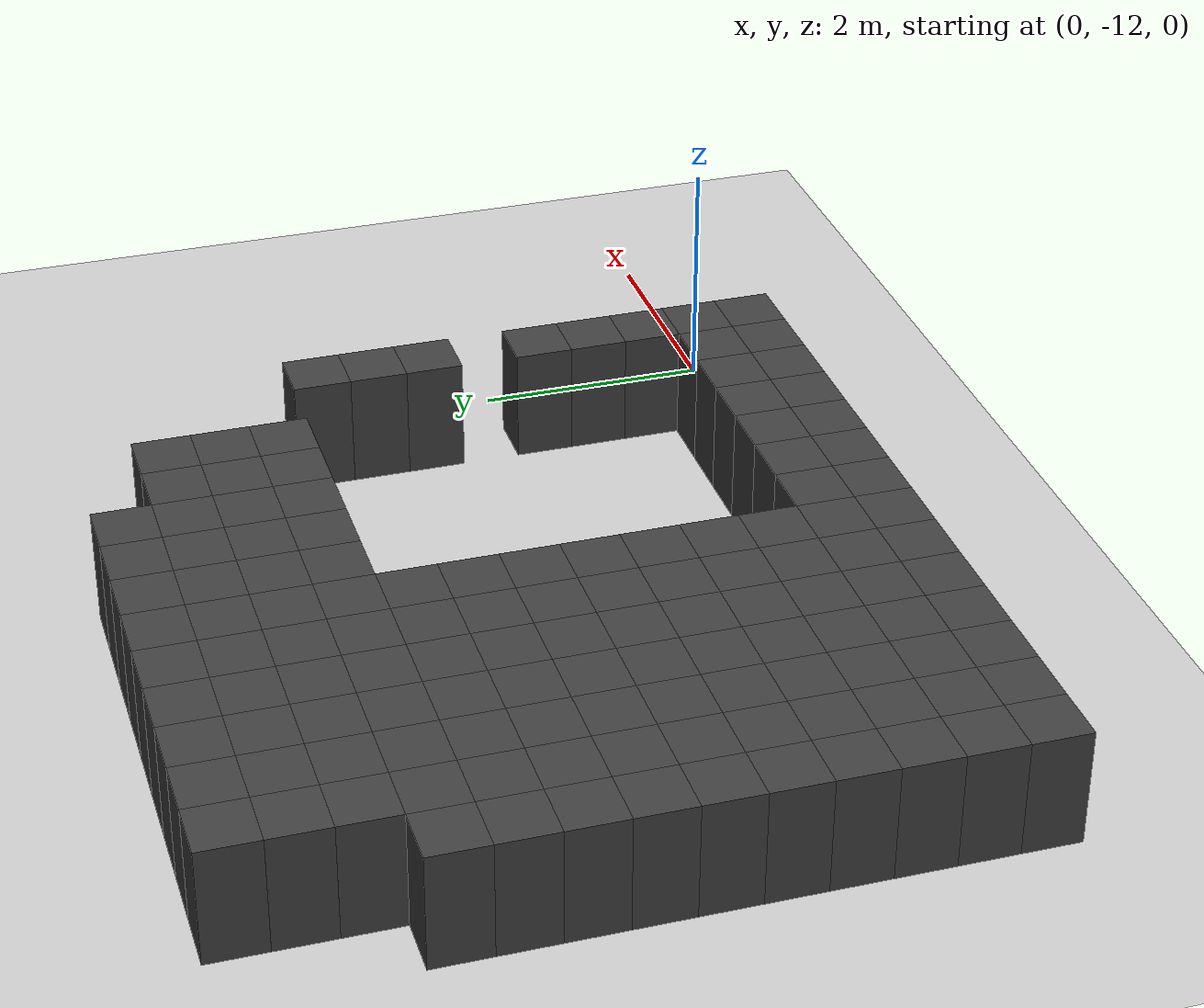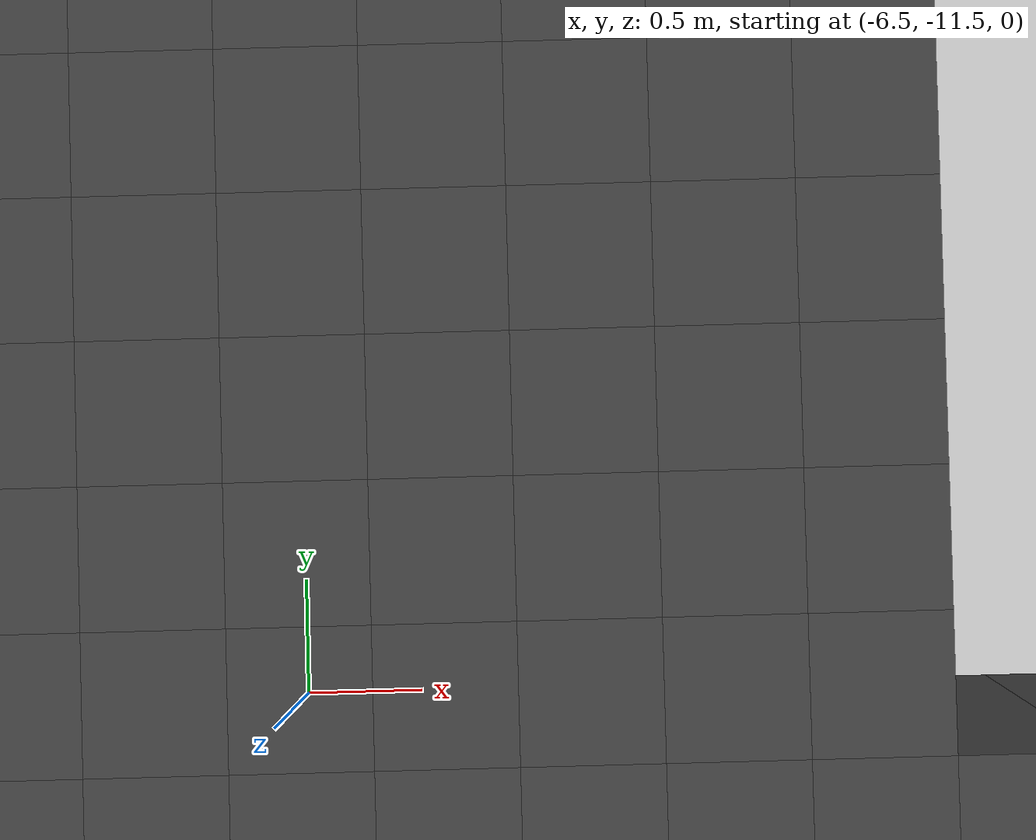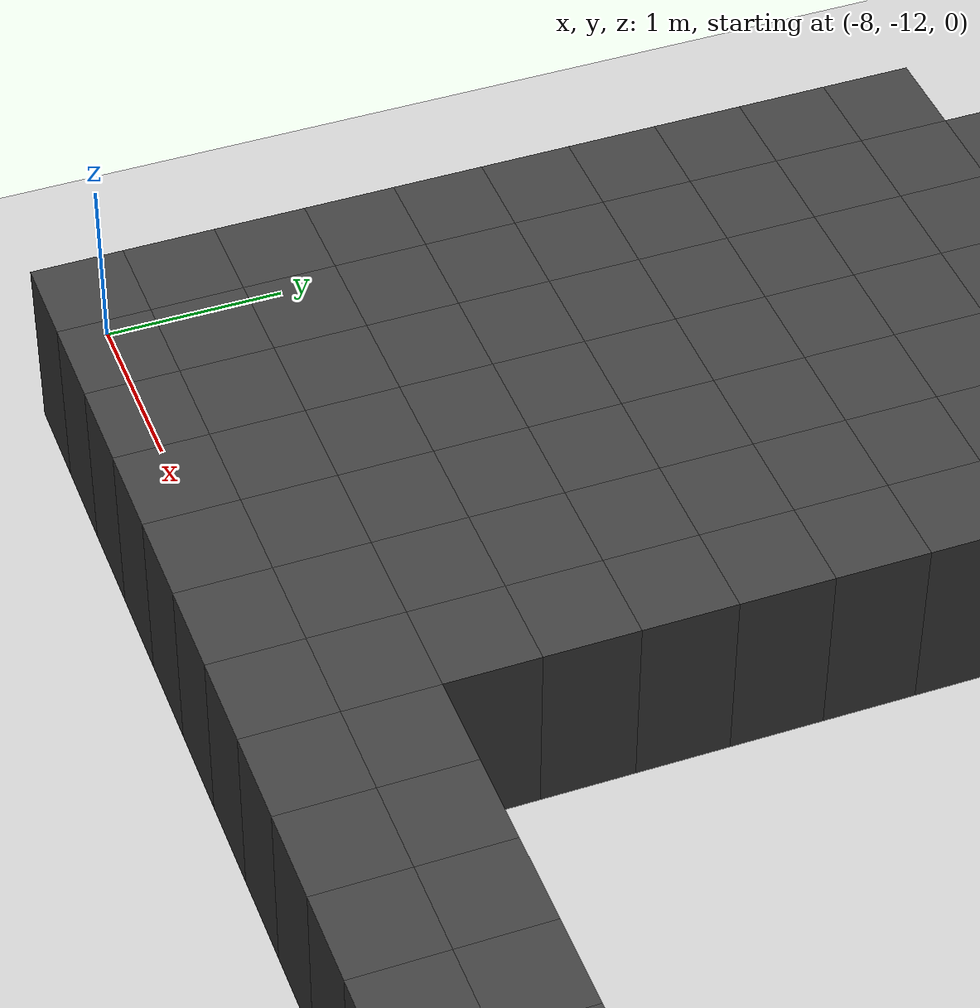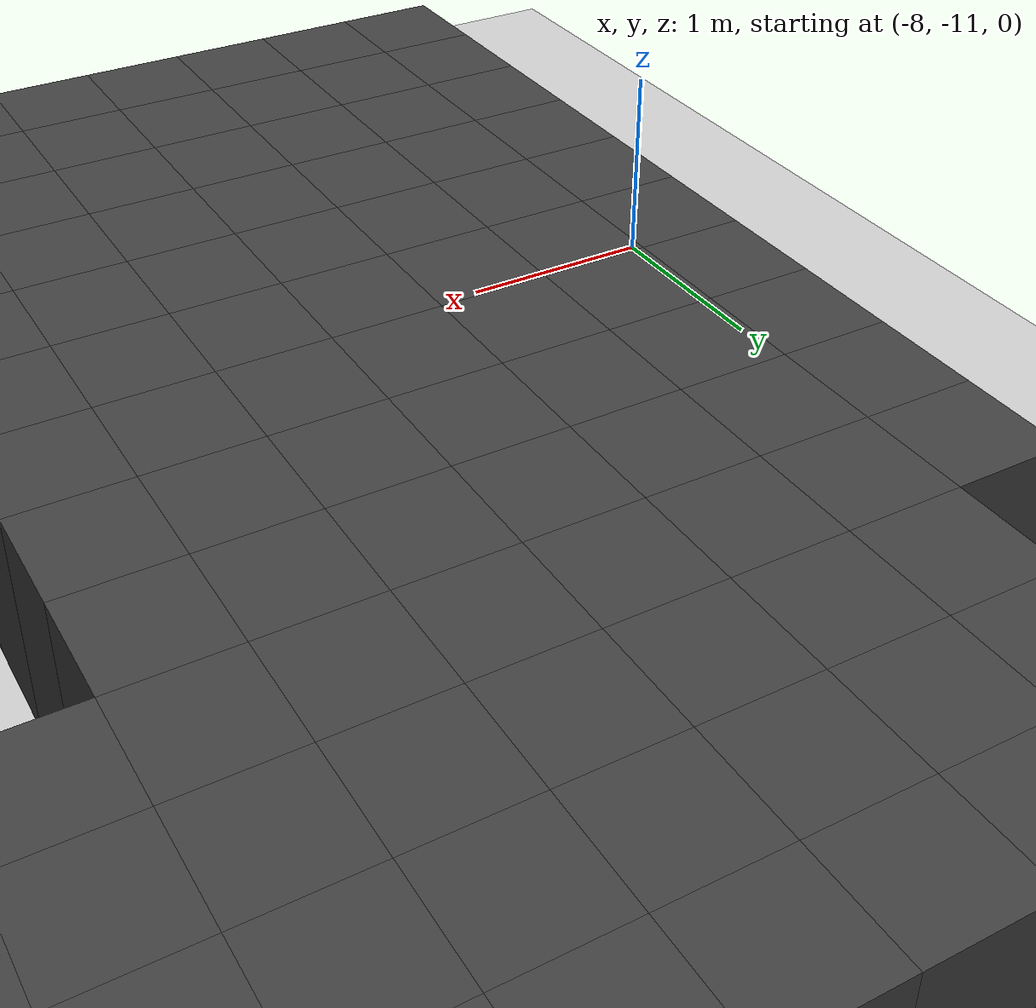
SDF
<sdf version="1.7">
 <world name="map_14056">
  <model name="ground_plane">
   <static>true</static>
   <link name="link">
    <collision name="collision">
     <geometry><plane><normal>0 0 1</normal><size>200 200</size></plane></geometry>
    </collision>
    <visual name="visual">
     <geometry><plane><normal>0 0 1</normal><size>200 200</size></plane></geometry>
     <material><ambient>0.8 0.8 0.8 1</ambient><diffuse>0.8 0.8 0.8 1</diffuse></material>
    </visual>
   </link>
  </model>
  <model name="maze_environment">
   <static>true</static>
   <link name="wall_1317">
    <pose>-6.750 -6.250 0.500 0 0 0</pose>
    <collision name="col"><geometry><box><size>0.5 0.5 1.0</size></box></geometry></collision>
    <visual name="vis">
     <geometry><box><size>0.5 0.5 1.0</size></box></geometry>
     <material><ambient>0.15 0.15 0.15 1</ambient><diffuse>0.25 0.25 0.25 1</diffuse></material>
    </visual>
   </link>
   <link name="wall_1318">
    <pose>-6.250 -6.250 0.500 0 0 0</pose>
    <collision name="col"><geometry><box><size>0.5 0.5 1.0</size></box></geometry></collision>
    <visual name="vis">
     <geometry><box><size>0.5 0.5 1.0</size></box></geometry>
     <material><ambient>0.15 0.15 0.15 1</ambient><diffuse>0.25 0.25 0.25 1</diffuse></material>
    </visual>
   </link>
   <link name="wall_1319">
    <pose>-5.750 -6.250 0.500 0 0 0</pose>
    <collision name="col"><geometry><box><size>0.5 0.5 1.0</size></box></geometry></collision>
    <visual name="vis">
     <geometry><box><size>0.5 0.5 1.0</size></box></geometry>
     <material><ambient>0.15 0.15 0.15 1</ambient><diffuse>0.25 0.25 0.25 1</diffuse></material>
    </visual>
   </link>
   <link name="wall_1320">
    <pose>-5.250 -6.250 0.500 0 0 0</pose>
    <collision name="col"><geometry><box><size>0.5 0.5 1.0</size></box></geometry></collision>
    <visual name="vis">
     <geometry><box><size>0.5 0.5 1.0</size></box></geometry>
     <material><ambient>0.15 0.15 0.15 1</ambient><diffuse>0.25 0.25 0.25 1</diffuse></material>
    </visual>
   </link>
   <link name="wall_1321">
    <pose>-4.750 -6.250 0.500 0 0 0</pose>
    <collision name="col"><geometry><box><size>0.5 0.5 1.0</size></box></geometry></collision>
    <visual name="vis">
     <geometry><box><size>0.5 0.5 1.0</size></box></geometry>
     <material><ambient>0.15 0.15 0.15 1</ambient><diffuse>0.25 0.25 0.25 1</diffuse></material>
    </visual>
   </link>
   <link name="wall_1322">
    <pose>-4.250 -6.250 0.500 0 0 0</pose>
    <collision name="col"><geometry><box><size>0.5 0.5 1.0</size></box></geometry></collision>
    <visual name="vis">
     <geometry><box><size>0.5 0.5 1.0</size></box></geometry>
     <material><ambient>0.15 0.15 0.15 1</ambient><diffuse>0.25 0.25 0.25 1</diffuse></material>
    </visual>
   </link>
   <link name="wall_1323">
    <pose>-3.750 -6.250 0.500 0 0 0</pose>
    <collision name="col"><geometry><box><size>0.5 0.5 1.0</size></box></geometry></collision>
    <visual name="vis">
     <geometry><box><size>0.5 0.5 1.0</size></box></geometry>
     <material><ambient>0.15 0.15 0.15 1</ambient><diffuse>0.25 0.25 0.25 1</diffuse></material>
    </visual>
   </link>
   <link name="wall_1324">
    <pose>-3.250 -6.250 0.500 0 0 0</pose>
    <collision name="col"><geometry><box><size>0.5 0.5 1.0</size></box></geometry></collision>
    <visual name="vis">
     <geometry><box><size>0.5 0.5 1.0</size></box></geometry>
     <material><ambient>0.15 0.15 0.15 1</ambient><diffuse>0.25 0.25 0.25 1</diffuse></material>
    </visual>
   </link>
   <link name="wall_1325">
    <pose>-2.750 -6.250 0.500 0 0 0</pose>
    <collision name="col"><geometry><box><size>0.5 0.5 1.0</size></box></geometry></collision>
    <visual name="vis">
     <geometry><box><size>0.5 0.5 1.0</size></box></geometry>
     <material><ambient>0.15 0.15 0.15 1</ambient><diffuse>0.25 0.25 0.25 1</diffuse></material>
    </visual>
   </link>
   <link name="wall_1350">
    <pose>-6.750 -6.750 0.500 0 0 0</pose>
    <collision name="col"><geometry><box><size>0.5 0.5 1.0</size></box></geometry></collision>
    <visual name="vis">
     <geometry><box><size>0.5 0.5 1.0</size></box></geometry>
     <material><ambient>0.15 0.15 0.15 1</ambient><diffuse>0.25 0.25 0.25 1</diffuse></material>
    </visual>
   </link>
   <link name="wall_1351">
    <pose>-6.250 -6.750 0.500 0 0 0</pose>
    <collision name="col"><geometry><box><size>0.5 0.5 1.0</size></box></geometry></collision>
    <visual name="vis">
     <geometry><box><size>0.5 0.5 1.0</size></box></geometry>
     <material><ambient>0.15 0.15 0.15 1</ambient><diffuse>0.25 0.25 0.25 1</diffuse></material>
    </visual>
   </link>
   <link name="wall_1352">
    <pose>-5.750 -6.750 0.500 0 0 0</pose>
    <collision name="col"><geometry><box><size>0.5 0.5 1.0</size></box></geometry></collision>
    <visual name="vis">
     <geometry><box><size>0.5 0.5 1.0</size></box></geometry>
     <material><ambient>0.15 0.15 0.15 1</ambient><diffuse>0.25 0.25 0.25 1</diffuse></material>
    </visual>
   </link>
   <link name="wall_1353">
    <pose>-5.250 -6.750 0.500 0 0 0</pose>
    <collision name="col"><geometry><box><size>0.5 0.5 1.0</size></box></geometry></collision>
    <visual name="vis">
     <geometry><box><size>0.5 0.5 1.0</size></box></geometry>
     <material><ambient>0.15 0.15 0.15 1</ambient><diffuse>0.25 0.25 0.25 1</diffuse></material>
    </visual>
   </link>
   <link name="wall_1354">
    <pose>-4.750 -6.750 0.500 0 0 0</pose>
    <collision name="col"><geometry><box><size>0.5 0.5 1.0</size></box></geometry></collision>
    <visual name="vis">
     <geometry><box><size>0.5 0.5 1.0</size></box></geometry>
     <material><ambient>0.15 0.15 0.15 1</ambient><diffuse>0.25 0.25 0.25 1</diffuse></material>
    </visual>
   </link>
   <link name="wall_1355">
    <pose>-4.250 -6.750 0.500 0 0 0</pose>
    <collision name="col"><geometry><box><size>0.5 0.5 1.0</size></box></geometry></collision>
    <visual name="vis">
     <geometry><box><size>0.5 0.5 1.0</size></box></geometry>
     <material><ambient>0.15 0.15 0.15 1</ambient><diffuse>0.25 0.25 0.25 1</diffuse></material>
    </visual>
   </link>
   <link name="wall_1356">
    <pose>-3.750 -6.750 0.500 0 0 0</pose>
    <collision name="col"><geometry><box><size>0.5 0.5 1.0</size></box></geometry></collision>
    <visual name="vis">
     <geometry><box><size>0.5 0.5 1.0</size></box></geometry>
     <material><ambient>0.15 0.15 0.15 1</ambient><diffuse>0.25 0.25 0.25 1</diffuse></material>
    </visual>
   </link>
   <link name="wall_1357">
    <pose>-3.250 -6.750 0.500 0 0 0</pose>
    <collision name="col"><geometry><box><size>0.5 0.5 1.0</size></box></geometry></collision>
    <visual name="vis">
     <geometry><box><size>0.5 0.5 1.0</size></box></geometry>
     <material><ambient>0.15 0.15 0.15 1</ambient><diffuse>0.25 0.25 0.25 1</diffuse></material>
    </visual>
   </link>
   <link name="wall_1358">
    <pose>-2.750 -6.750 0.500 0 0 0</pose>
    <collision name="col"><geometry><box><size>0.5 0.5 1.0</size></box></geometry></collision>
    <visual name="vis">
     <geometry><box><size>0.5 0.5 1.0</size></box></geometry>
     <material><ambient>0.15 0.15 0.15 1</ambient><diffuse>0.25 0.25 0.25 1</diffuse></material>
    </visual>
   </link>
   <link name="wall_1359">
    <pose>-2.250 -6.750 0.500 0 0 0</pose>
    <collision name="col"><geometry><box><size>0.5 0.5 1.0</size></box></geometry></collision>
    <visual name="vis">
     <geometry><box><size>0.5 0.5 1.0</size></box></geometry>
     <material><ambient>0.15 0.15 0.15 1</ambient><diffuse>0.25 0.25 0.25 1</diffuse></material>
    </visual>
   </link>
   <link name="wall_1360">
    <pose>-1.750 -6.750 0.500 0 0 0</pose>
    <collision name="col"><geometry><box><size>0.5 0.5 1.0</size></box></geometry></collision>
    <visual name="vis">
     <geometry><box><size>0.5 0.5 1.0</size></box></geometry>
     <material><ambient>0.15 0.15 0.15 1</ambient><diffuse>0.25 0.25 0.25 1</diffuse></material>
    </visual>
   </link>
   <link name="wall_1381">
    <pose>-6.750 -7.250 0.500 0 0 0</pose>
    <collision name="col"><geometry><box><size>0.5 0.5 1.0</size></box></geometry></collision>
    <visual name="vis">
     <geometry><box><size>0.5 0.5 1.0</size></box></geometry>
     <material><ambient>0.15 0.15 0.15 1</ambient><diffuse>0.25 0.25 0.25 1</diffuse></material>
    </visual>
   </link>
   <link name="wall_1382">
    <pose>-6.250 -7.250 0.500 0 0 0</pose>
    <collision name="col"><geometry><box><size>0.5 0.5 1.0</size></box></geometry></collision>
    <visual name="vis">
     <geometry><box><size>0.5 0.5 1.0</size></box></geometry>
     <material><ambient>0.15 0.15 0.15 1</ambient><diffuse>0.25 0.25 0.25 1</diffuse></material>
    </visual>
   </link>
   <link name="wall_1383">
    <pose>-5.750 -7.250 0.500 0 0 0</pose>
    <collision name="col"><geometry><box><size>0.5 0.5 1.0</size></box></geometry></collision>
    <visual name="vis">
     <geometry><box><size>0.5 0.5 1.0</size></box></geometry>
     <material><ambient>0.15 0.15 0.15 1</ambient><diffuse>0.25 0.25 0.25 1</diffuse></material>
    </visual>
   </link>
   <link name="wall_1384">
    <pose>-5.250 -7.250 0.500 0 0 0</pose>
    <collision name="col"><geometry><box><size>0.5 0.5 1.0</size></box></geometry></collision>
    <visual name="vis">
     <geometry><box><size>0.5 0.5 1.0</size></box></geometry>
     <material><ambient>0.15 0.15 0.15 1</ambient><diffuse>0.25 0.25 0.25 1</diffuse></material>
    </visual>
   </link>
   <link name="wall_1385">
    <pose>-4.750 -7.250 0.500 0 0 0</pose>
    <collision name="col"><geometry><box><size>0.5 0.5 1.0</size></box></geometry></collision>
    <visual name="vis">
     <geometry><box><size>0.5 0.5 1.0</size></box></geometry>
     <material><ambient>0.15 0.15 0.15 1</ambient><diffuse>0.25 0.25 0.25 1</diffuse></material>
    </visual>
   </link>
   <link name="wall_1386">
    <pose>-4.250 -7.250 0.500 0 0 0</pose>
    <collision name="col"><geometry><box><size>0.5 0.5 1.0</size></box></geometry></collision>
    <visual name="vis">
     <geometry><box><size>0.5 0.5 1.0</size></box></geometry>
     <material><ambient>0.15 0.15 0.15 1</ambient><diffuse>0.25 0.25 0.25 1</diffuse></material>
    </visual>
   </link>
   <link name="wall_1387">
    <pose>-3.750 -7.250 0.500 0 0 0</pose>
    <collision name="col"><geometry><box><size>0.5 0.5 1.0</size></box></geometry></collision>
    <visual name="vis">
     <geometry><box><size>0.5 0.5 1.0</size></box></geometry>
     <material><ambient>0.15 0.15 0.15 1</ambient><diffuse>0.25 0.25 0.25 1</diffuse></material>
    </visual>
   </link>
   <link name="wall_1388">
    <pose>-3.250 -7.250 0.500 0 0 0</pose>
    <collision name="col"><geometry><box><size>0.5 0.5 1.0</size></box></geometry></collision>
    <visual name="vis">
     <geometry><box><size>0.5 0.5 1.0</size></box></geometry>
     <material><ambient>0.15 0.15 0.15 1</ambient><diffuse>0.25 0.25 0.25 1</diffuse></material>
    </visual>
   </link>
   <link name="wall_1389">
    <pose>-2.750 -7.250 0.500 0 0 0</pose>
    <collision name="col"><geometry><box><size>0.5 0.5 1.0</size></box></geometry></collision>
    <visual name="vis">
     <geometry><box><size>0.5 0.5 1.0</size></box></geometry>
     <material><ambient>0.15 0.15 0.15 1</ambient><diffuse>0.25 0.25 0.25 1</diffuse></material>
    </visual>
   </link>
   <link name="wall_1390">
    <pose>-2.250 -7.250 0.500 0 0 0</pose>
    <collision name="col"><geometry><box><size>0.5 0.5 1.0</size></box></geometry></collision>
    <visual name="vis">
     <geometry><box><size>0.5 0.5 1.0</size></box></geometry>
     <material><ambient>0.15 0.15 0.15 1</ambient><diffuse>0.25 0.25 0.25 1</diffuse></material>
    </visual>
   </link>
   <link name="wall_1391">
    <pose>-1.750 -7.250 0.500 0 0 0</pose>
    <collision name="col"><geometry><box><size>0.5 0.5 1.0</size></box></geometry></collision>
    <visual name="vis">
     <geometry><box><size>0.5 0.5 1.0</size></box></geometry>
     <material><ambient>0.15 0.15 0.15 1</ambient><diffuse>0.25 0.25 0.25 1</diffuse></material>
    </visual>
   </link>
   <link name="wall_1415">
    <pose>-7.250 -7.750 0.500 0 0 0</pose>
    <collision name="col"><geometry><box><size>0.5 0.5 1.0</size></box></geometry></collision>
    <visual name="vis">
     <geometry><box><size>0.5 0.5 1.0</size></box></geometry>
     <material><ambient>0.15 0.15 0.15 1</ambient><diffuse>0.25 0.25 0.25 1</diffuse></material>
    </visual>
   </link>
   <link name="wall_1416">
    <pose>-6.750 -7.750 0.500 0 0 0</pose>
    <collision name="col"><geometry><box><size>0.5 0.5 1.0</size></box></geometry></collision>
    <visual name="vis">
     <geometry><box><size>0.5 0.5 1.0</size></box></geometry>
     <material><ambient>0.15 0.15 0.15 1</ambient><diffuse>0.25 0.25 0.25 1</diffuse></material>
    </visual>
   </link>
   <link name="wall_1417">
    <pose>-6.250 -7.750 0.500 0 0 0</pose>
    <collision name="col"><geometry><box><size>0.5 0.5 1.0</size></box></geometry></collision>
    <visual name="vis">
     <geometry><box><size>0.5 0.5 1.0</size></box></geometry>
     <material><ambient>0.15 0.15 0.15 1</ambient><diffuse>0.25 0.25 0.25 1</diffuse></material>
    </visual>
   </link>
   <link name="wall_1418">
    <pose>-5.750 -7.750 0.500 0 0 0</pose>
    <collision name="col"><geometry><box><size>0.5 0.5 1.0</size></box></geometry></collision>
    <visual name="vis">
     <geometry><box><size>0.5 0.5 1.0</size></box></geometry>
     <material><ambient>0.15 0.15 0.15 1</ambient><diffuse>0.25 0.25 0.25 1</diffuse></material>
    </visual>
   </link>
   <link name="wall_1419">
    <pose>-5.250 -7.750 0.500 0 0 0</pose>
    <collision name="col"><geometry><box><size>0.5 0.5 1.0</size></box></geometry></collision>
    <visual name="vis">
     <geometry><box><size>0.5 0.5 1.0</size></box></geometry>
     <material><ambient>0.15 0.15 0.15 1</ambient><diffuse>0.25 0.25 0.25 1</diffuse></material>
    </visual>
   </link>
   <link name="wall_1420">
    <pose>-4.750 -7.750 0.500 0 0 0</pose>
    <collision name="col"><geometry><box><size>0.5 0.5 1.0</size></box></geometry></collision>
    <visual name="vis">
     <geometry><box><size>0.5 0.5 1.0</size></box></geometry>
     <material><ambient>0.15 0.15 0.15 1</ambient><diffuse>0.25 0.25 0.25 1</diffuse></material>
    </visual>
   </link>
   <link name="wall_1421">
    <pose>-4.250 -7.750 0.500 0 0 0</pose>
    <collision name="col"><geometry><box><size>0.5 0.5 1.0</size></box></geometry></collision>
    <visual name="vis">
     <geometry><box><size>0.5 0.5 1.0</size></box></geometry>
     <material><ambient>0.15 0.15 0.15 1</ambient><diffuse>0.25 0.25 0.25 1</diffuse></material>
    </visual>
   </link>
   <link name="wall_1422">
    <pose>-3.750 -7.750 0.500 0 0 0</pose>
    <collision name="col"><geometry><box><size>0.5 0.5 1.0</size></box></geometry></collision>
    <visual name="vis">
     <geometry><box><size>0.5 0.5 1.0</size></box></geometry>
     <material><ambient>0.15 0.15 0.15 1</ambient><diffuse>0.25 0.25 0.25 1</diffuse></material>
    </visual>
   </link>
   <link name="wall_1423">
    <pose>-3.250 -7.750 0.500 0 0 0</pose>
    <collision name="col"><geometry><box><size>0.5 0.5 1.0</size></box></geometry></collision>
    <visual name="vis">
     <geometry><box><size>0.5 0.5 1.0</size></box></geometry>
     <material><ambient>0.15 0.15 0.15 1</ambient><diffuse>0.25 0.25 0.25 1</diffuse></material>
    </visual>
   </link>
   <link name="wall_1424">
    <pose>-2.750 -7.750 0.500 0 0 0</pose>
    <collision name="col"><geometry><box><size>0.5 0.5 1.0</size></box></geometry></collision>
    <visual name="vis">
     <geometry><box><size>0.5 0.5 1.0</size></box></geometry>
     <material><ambient>0.15 0.15 0.15 1</ambient><diffuse>0.25 0.25 0.25 1</diffuse></material>
    </visual>
   </link>
   <link name="wall_1425">
    <pose>-2.250 -7.750 0.500 0 0 0</pose>
    <collision name="col"><geometry><box><size>0.5 0.5 1.0</size></box></geometry></collision>
    <visual name="vis">
     <geometry><box><size>0.5 0.5 1.0</size></box></geometry>
     <material><ambient>0.15 0.15 0.15 1</ambient><diffuse>0.25 0.25 0.25 1</diffuse></material>
    </visual>
   </link>
   <link name="wall_1426">
    <pose>-1.750 -7.750 0.500 0 0 0</pose>
    <collision name="col"><geometry><box><size>0.5 0.5 1.0</size></box></geometry></collision>
    <visual name="vis">
     <geometry><box><size>0.5 0.5 1.0</size></box></geometry>
     <material><ambient>0.15 0.15 0.15 1</ambient><diffuse>0.25 0.25 0.25 1</diffuse></material>
    </visual>
   </link>
   <link name="wall_1450">
    <pose>-7.250 -8.250 0.500 0 0 0</pose>
    <collision name="col"><geometry><box><size>0.5 0.5 1.0</size></box></geometry></collision>
    <visual name="vis">
     <geometry><box><size>0.5 0.5 1.0</size></box></geometry>
     <material><ambient>0.15 0.15 0.15 1</ambient><diffuse>0.25 0.25 0.25 1</diffuse></material>
    </visual>
   </link>
   <link name="wall_1451">
    <pose>-6.750 -8.250 0.500 0 0 0</pose>
    <collision name="col"><geometry><box><size>0.5 0.5 1.0</size></box></geometry></collision>
    <visual name="vis">
     <geometry><box><size>0.5 0.5 1.0</size></box></geometry>
     <material><ambient>0.15 0.15 0.15 1</ambient><diffuse>0.25 0.25 0.25 1</diffuse></material>
    </visual>
   </link>
   <link name="wall_1452">
    <pose>-6.250 -8.250 0.500 0 0 0</pose>
    <collision name="col"><geometry><box><size>0.5 0.5 1.0</size></box></geometry></collision>
    <visual name="vis">
     <geometry><box><size>0.5 0.5 1.0</size></box></geometry>
     <material><ambient>0.15 0.15 0.15 1</ambient><diffuse>0.25 0.25 0.25 1</diffuse></material>
    </visual>
   </link>
   <link name="wall_1453">
    <pose>-5.750 -8.250 0.500 0 0 0</pose>
    <collision name="col"><geometry><box><size>0.5 0.5 1.0</size></box></geometry></collision>
    <visual name="vis">
     <geometry><box><size>0.5 0.5 1.0</size></box></geometry>
     <material><ambient>0.15 0.15 0.15 1</ambient><diffuse>0.25 0.25 0.25 1</diffuse></material>
    </visual>
   </link>
   <link name="wall_1454">
    <pose>-5.250 -8.250 0.500 0 0 0</pose>
    <collision name="col"><geometry><box><size>0.5 0.5 1.0</size></box></geometry></collision>
    <visual name="vis">
     <geometry><box><size>0.5 0.5 1.0</size></box></geometry>
     <material><ambient>0.15 0.15 0.15 1</ambient><diffuse>0.25 0.25 0.25 1</diffuse></material>
    </visual>
   </link>
   <link name="wall_1455">
    <pose>-4.750 -8.250 0.500 0 0 0</pose>
    <collision name="col"><geometry><box><size>0.5 0.5 1.0</size></box></geometry></collision>
    <visual name="vis">
     <geometry><box><size>0.5 0.5 1.0</size></box></geometry>
     <material><ambient>0.15 0.15 0.15 1</ambient><diffuse>0.25 0.25 0.25 1</diffuse></material>
    </visual>
   </link>
   <link name="wall_1456">
    <pose>-4.250 -8.250 0.500 0 0 0</pose>
    <collision name="col"><geometry><box><size>0.5 0.5 1.0</size></box></geometry></collision>
    <visual name="vis">
     <geometry><box><size>0.5 0.5 1.0</size></box></geometry>
     <material><ambient>0.15 0.15 0.15 1</ambient><diffuse>0.25 0.25 0.25 1</diffuse></material>
    </visual>
   </link>
   <link name="wall_1457">
    <pose>-0.750 -8.250 0.500 0 0 0</pose>
    <collision name="col"><geometry><box><size>0.5 0.5 1.0</size></box></geometry></collision>
    <visual name="vis">
     <geometry><box><size>0.5 0.5 1.0</size></box></geometry>
     <material><ambient>0.15 0.15 0.15 1</ambient><diffuse>0.25 0.25 0.25 1</diffuse></material>
    </visual>
   </link>
   <link name="wall_1486">
    <pose>-7.250 -8.750 0.500 0 0 0</pose>
    <collision name="col"><geometry><box><size>0.5 0.5 1.0</size></box></geometry></collision>
    <visual name="vis">
     <geometry><box><size>0.5 0.5 1.0</size></box></geometry>
     <material><ambient>0.15 0.15 0.15 1</ambient><diffuse>0.25 0.25 0.25 1</diffuse></material>
    </visual>
   </link>
   <link name="wall_1487">
    <pose>-6.750 -8.750 0.500 0 0 0</pose>
    <collision name="col"><geometry><box><size>0.5 0.5 1.0</size></box></geometry></collision>
    <visual name="vis">
     <geometry><box><size>0.5 0.5 1.0</size></box></geometry>
     <material><ambient>0.15 0.15 0.15 1</ambient><diffuse>0.25 0.25 0.25 1</diffuse></material>
    </visual>
   </link>
   <link name="wall_1488">
    <pose>-6.250 -8.750 0.500 0 0 0</pose>
    <collision name="col"><geometry><box><size>0.5 0.5 1.0</size></box></geometry></collision>
    <visual name="vis">
     <geometry><box><size>0.5 0.5 1.0</size></box></geometry>
     <material><ambient>0.15 0.15 0.15 1</ambient><diffuse>0.25 0.25 0.25 1</diffuse></material>
    </visual>
   </link>
   <link name="wall_1489">
    <pose>-5.750 -8.750 0.500 0 0 0</pose>
    <collision name="col"><geometry><box><size>0.5 0.5 1.0</size></box></geometry></collision>
    <visual name="vis">
     <geometry><box><size>0.5 0.5 1.0</size></box></geometry>
     <material><ambient>0.15 0.15 0.15 1</ambient><diffuse>0.25 0.25 0.25 1</diffuse></material>
    </visual>
   </link>
   <link name="wall_1490">
    <pose>-5.250 -8.750 0.500 0 0 0</pose>
    <collision name="col"><geometry><box><size>0.5 0.5 1.0</size></box></geometry></collision>
    <visual name="vis">
     <geometry><box><size>0.5 0.5 1.0</size></box></geometry>
     <material><ambient>0.15 0.15 0.15 1</ambient><diffuse>0.25 0.25 0.25 1</diffuse></material>
    </visual>
   </link>
   <link name="wall_1491">
    <pose>-4.750 -8.750 0.500 0 0 0</pose>
    <collision name="col"><geometry><box><size>0.5 0.5 1.0</size></box></geometry></collision>
    <visual name="vis">
     <geometry><box><size>0.5 0.5 1.0</size></box></geometry>
     <material><ambient>0.15 0.15 0.15 1</ambient><diffuse>0.25 0.25 0.25 1</diffuse></material>
    </visual>
   </link>
   <link name="wall_1492">
    <pose>-4.250 -8.750 0.500 0 0 0</pose>
    <collision name="col"><geometry><box><size>0.5 0.5 1.0</size></box></geometry></collision>
    <visual name="vis">
     <geometry><box><size>0.5 0.5 1.0</size></box></geometry>
     <material><ambient>0.15 0.15 0.15 1</ambient><diffuse>0.25 0.25 0.25 1</diffuse></material>
    </visual>
   </link>
   <link name="wall_1493">
    <pose>-0.750 -8.750 0.500 0 0 0</pose>
    <collision name="col"><geometry><box><size>0.5 0.5 1.0</size></box></geometry></collision>
    <visual name="vis">
     <geometry><box><size>0.5 0.5 1.0</size></box></geometry>
     <material><ambient>0.15 0.15 0.15 1</ambient><diffuse>0.25 0.25 0.25 1</diffuse></material>
    </visual>
   </link>
   <link name="wall_1522">
    <pose>-7.250 -9.250 0.500 0 0 0</pose>
    <collision name="col"><geometry><box><size>0.5 0.5 1.0</size></box></geometry></collision>
    <visual name="vis">
     <geometry><box><size>0.5 0.5 1.0</size></box></geometry>
     <material><ambient>0.15 0.15 0.15 1</ambient><diffuse>0.25 0.25 0.25 1</diffuse></material>
    </visual>
   </link>
   <link name="wall_1523">
    <pose>-6.750 -9.250 0.500 0 0 0</pose>
    <collision name="col"><geometry><box><size>0.5 0.5 1.0</size></box></geometry></collision>
    <visual name="vis">
     <geometry><box><size>0.5 0.5 1.0</size></box></geometry>
     <material><ambient>0.15 0.15 0.15 1</ambient><diffuse>0.25 0.25 0.25 1</diffuse></material>
    </visual>
   </link>
   <link name="wall_1524">
    <pose>-6.250 -9.250 0.500 0 0 0</pose>
    <collision name="col"><geometry><box><size>0.5 0.5 1.0</size></box></geometry></collision>
    <visual name="vis">
     <geometry><box><size>0.5 0.5 1.0</size></box></geometry>
     <material><ambient>0.15 0.15 0.15 1</ambient><diffuse>0.25 0.25 0.25 1</diffuse></material>
    </visual>
   </link>
   <link name="wall_1525">
    <pose>-5.750 -9.250 0.500 0 0 0</pose>
    <collision name="col"><geometry><box><size>0.5 0.5 1.0</size></box></geometry></collision>
    <visual name="vis">
     <geometry><box><size>0.5 0.5 1.0</size></box></geometry>
     <material><ambient>0.15 0.15 0.15 1</ambient><diffuse>0.25 0.25 0.25 1</diffuse></material>
    </visual>
   </link>
   <link name="wall_1526">
    <pose>-5.250 -9.250 0.500 0 0 0</pose>
    <collision name="col"><geometry><box><size>0.5 0.5 1.0</size></box></geometry></collision>
    <visual name="vis">
     <geometry><box><size>0.5 0.5 1.0</size></box></geometry>
     <material><ambient>0.15 0.15 0.15 1</ambient><diffuse>0.25 0.25 0.25 1</diffuse></material>
    </visual>
   </link>
   <link name="wall_1527">
    <pose>-4.750 -9.250 0.500 0 0 0</pose>
    <collision name="col"><geometry><box><size>0.5 0.5 1.0</size></box></geometry></collision>
    <visual name="vis">
     <geometry><box><size>0.5 0.5 1.0</size></box></geometry>
     <material><ambient>0.15 0.15 0.15 1</ambient><diffuse>0.25 0.25 0.25 1</diffuse></material>
    </visual>
   </link>
   <link name="wall_1528">
    <pose>-4.250 -9.250 0.500 0 0 0</pose>
    <collision name="col"><geometry><box><size>0.5 0.5 1.0</size></box></geometry></collision>
    <visual name="vis">
     <geometry><box><size>0.5 0.5 1.0</size></box></geometry>
     <material><ambient>0.15 0.15 0.15 1</ambient><diffuse>0.25 0.25 0.25 1</diffuse></material>
    </visual>
   </link>
   <link name="wall_1529">
    <pose>-0.750 -9.250 0.500 0 0 0</pose>
    <collision name="col"><geometry><box><size>0.5 0.5 1.0</size></box></geometry></collision>
    <visual name="vis">
     <geometry><box><size>0.5 0.5 1.0</size></box></geometry>
     <material><ambient>0.15 0.15 0.15 1</ambient><diffuse>0.25 0.25 0.25 1</diffuse></material>
    </visual>
   </link>
   <link name="wall_1565">
    <pose>-7.250 -9.750 0.500 0 0 0</pose>
    <collision name="col"><geometry><box><size>0.5 0.5 1.0</size></box></geometry></collision>
    <visual name="vis">
     <geometry><box><size>0.5 0.5 1.0</size></box></geometry>
     <material><ambient>0.15 0.15 0.15 1</ambient><diffuse>0.25 0.25 0.25 1</diffuse></material>
    </visual>
   </link>
   <link name="wall_1566">
    <pose>-6.750 -9.750 0.500 0 0 0</pose>
    <collision name="col"><geometry><box><size>0.5 0.5 1.0</size></box></geometry></collision>
    <visual name="vis">
     <geometry><box><size>0.5 0.5 1.0</size></box></geometry>
     <material><ambient>0.15 0.15 0.15 1</ambient><diffuse>0.25 0.25 0.25 1</diffuse></material>
    </visual>
   </link>
   <link name="wall_1567">
    <pose>-6.250 -9.750 0.500 0 0 0</pose>
    <collision name="col"><geometry><box><size>0.5 0.5 1.0</size></box></geometry></collision>
    <visual name="vis">
     <geometry><box><size>0.5 0.5 1.0</size></box></geometry>
     <material><ambient>0.15 0.15 0.15 1</ambient><diffuse>0.25 0.25 0.25 1</diffuse></material>
    </visual>
   </link>
   <link name="wall_1568">
    <pose>-5.750 -9.750 0.500 0 0 0</pose>
    <collision name="col"><geometry><box><size>0.5 0.5 1.0</size></box></geometry></collision>
    <visual name="vis">
     <geometry><box><size>0.5 0.5 1.0</size></box></geometry>
     <material><ambient>0.15 0.15 0.15 1</ambient><diffuse>0.25 0.25 0.25 1</diffuse></material>
    </visual>
   </link>
   <link name="wall_1569">
    <pose>-5.250 -9.750 0.500 0 0 0</pose>
    <collision name="col"><geometry><box><size>0.5 0.5 1.0</size></box></geometry></collision>
    <visual name="vis">
     <geometry><box><size>0.5 0.5 1.0</size></box></geometry>
     <material><ambient>0.15 0.15 0.15 1</ambient><diffuse>0.25 0.25 0.25 1</diffuse></material>
    </visual>
   </link>
   <link name="wall_1570">
    <pose>-4.750 -9.750 0.500 0 0 0</pose>
    <collision name="col"><geometry><box><size>0.5 0.5 1.0</size></box></geometry></collision>
    <visual name="vis">
     <geometry><box><size>0.5 0.5 1.0</size></box></geometry>
     <material><ambient>0.15 0.15 0.15 1</ambient><diffuse>0.25 0.25 0.25 1</diffuse></material>
    </visual>
   </link>
   <link name="wall_1571">
    <pose>-4.250 -9.750 0.500 0 0 0</pose>
    <collision name="col"><geometry><box><size>0.5 0.5 1.0</size></box></geometry></collision>
    <visual name="vis">
     <geometry><box><size>0.5 0.5 1.0</size></box></geometry>
     <material><ambient>0.15 0.15 0.15 1</ambient><diffuse>0.25 0.25 0.25 1</diffuse></material>
    </visual>
   </link>
   <link name="wall_1598">
    <pose>-7.250 -10.250 0.500 0 0 0</pose>
    <collision name="col"><geometry><box><size>0.5 0.5 1.0</size></box></geometry></collision>
    <visual name="vis">
     <geometry><box><size>0.5 0.5 1.0</size></box></geometry>
     <material><ambient>0.15 0.15 0.15 1</ambient><diffuse>0.25 0.25 0.25 1</diffuse></material>
    </visual>
   </link>
   <link name="wall_1599">
    <pose>-6.750 -10.250 0.500 0 0 0</pose>
    <collision name="col"><geometry><box><size>0.5 0.5 1.0</size></box></geometry></collision>
    <visual name="vis">
     <geometry><box><size>0.5 0.5 1.0</size></box></geometry>
     <material><ambient>0.15 0.15 0.15 1</ambient><diffuse>0.25 0.25 0.25 1</diffuse></material>
    </visual>
   </link>
   <link name="wall_1600">
    <pose>-6.250 -10.250 0.500 0 0 0</pose>
    <collision name="col"><geometry><box><size>0.5 0.5 1.0</size></box></geometry></collision>
    <visual name="vis">
     <geometry><box><size>0.5 0.5 1.0</size></box></geometry>
     <material><ambient>0.15 0.15 0.15 1</ambient><diffuse>0.25 0.25 0.25 1</diffuse></material>
    </visual>
   </link>
   <link name="wall_1601">
    <pose>-5.750 -10.250 0.500 0 0 0</pose>
    <collision name="col"><geometry><box><size>0.5 0.5 1.0</size></box></geometry></collision>
    <visual name="vis">
     <geometry><box><size>0.5 0.5 1.0</size></box></geometry>
     <material><ambient>0.15 0.15 0.15 1</ambient><diffuse>0.25 0.25 0.25 1</diffuse></material>
    </visual>
   </link>
   <link name="wall_1602">
    <pose>-5.250 -10.250 0.500 0 0 0</pose>
    <collision name="col"><geometry><box><size>0.5 0.5 1.0</size></box></geometry></collision>
    <visual name="vis">
     <geometry><box><size>0.5 0.5 1.0</size></box></geometry>
     <material><ambient>0.15 0.15 0.15 1</ambient><diffuse>0.25 0.25 0.25 1</diffuse></material>
    </visual>
   </link>
   <link name="wall_1603">
    <pose>-4.750 -10.250 0.500 0 0 0</pose>
    <collision name="col"><geometry><box><size>0.5 0.5 1.0</size></box></geometry></collision>
    <visual name="vis">
     <geometry><box><size>0.5 0.5 1.0</size></box></geometry>
     <material><ambient>0.15 0.15 0.15 1</ambient><diffuse>0.25 0.25 0.25 1</diffuse></material>
    </visual>
   </link>
   <link name="wall_1604">
    <pose>-4.250 -10.250 0.500 0 0 0</pose>
    <collision name="col"><geometry><box><size>0.5 0.5 1.0</size></box></geometry></collision>
    <visual name="vis">
     <geometry><box><size>0.5 0.5 1.0</size></box></geometry>
     <material><ambient>0.15 0.15 0.15 1</ambient><diffuse>0.25 0.25 0.25 1</diffuse></material>
    </visual>
   </link>
   <link name="wall_1605">
    <pose>-0.750 -10.250 0.500 0 0 0</pose>
    <collision name="col"><geometry><box><size>0.5 0.5 1.0</size></box></geometry></collision>
    <visual name="vis">
     <geometry><box><size>0.5 0.5 1.0</size></box></geometry>
     <material><ambient>0.15 0.15 0.15 1</ambient><diffuse>0.25 0.25 0.25 1</diffuse></material>
    </visual>
   </link>
   <link name="wall_1634">
    <pose>-7.250 -10.750 0.500 0 0 0</pose>
    <collision name="col"><geometry><box><size>0.5 0.5 1.0</size></box></geometry></collision>
    <visual name="vis">
     <geometry><box><size>0.5 0.5 1.0</size></box></geometry>
     <material><ambient>0.15 0.15 0.15 1</ambient><diffuse>0.25 0.25 0.25 1</diffuse></material>
    </visual>
   </link>
   <link name="wall_1635">
    <pose>-6.750 -10.750 0.500 0 0 0</pose>
    <collision name="col"><geometry><box><size>0.5 0.5 1.0</size></box></geometry></collision>
    <visual name="vis">
     <geometry><box><size>0.5 0.5 1.0</size></box></geometry>
     <material><ambient>0.15 0.15 0.15 1</ambient><diffuse>0.25 0.25 0.25 1</diffuse></material>
    </visual>
   </link>
   <link name="wall_1636">
    <pose>-6.250 -10.750 0.500 0 0 0</pose>
    <collision name="col"><geometry><box><size>0.5 0.5 1.0</size></box></geometry></collision>
    <visual name="vis">
     <geometry><box><size>0.5 0.5 1.0</size></box></geometry>
     <material><ambient>0.15 0.15 0.15 1</ambient><diffuse>0.25 0.25 0.25 1</diffuse></material>
    </visual>
   </link>
   <link name="wall_1637">
    <pose>-5.750 -10.750 0.500 0 0 0</pose>
    <collision name="col"><geometry><box><size>0.5 0.5 1.0</size></box></geometry></collision>
    <visual name="vis">
     <geometry><box><size>0.5 0.5 1.0</size></box></geometry>
     <material><ambient>0.15 0.15 0.15 1</ambient><diffuse>0.25 0.25 0.25 1</diffuse></material>
    </visual>
   </link>
   <link name="wall_1638">
    <pose>-5.250 -10.750 0.500 0 0 0</pose>
    <collision name="col"><geometry><box><size>0.5 0.5 1.0</size></box></geometry></collision>
    <visual name="vis">
     <geometry><box><size>0.5 0.5 1.0</size></box></geometry>
     <material><ambient>0.15 0.15 0.15 1</ambient><diffuse>0.25 0.25 0.25 1</diffuse></material>
    </visual>
   </link>
   <link name="wall_1639">
    <pose>-4.750 -10.750 0.500 0 0 0</pose>
    <collision name="col"><geometry><box><size>0.5 0.5 1.0</size></box></geometry></collision>
    <visual name="vis">
     <geometry><box><size>0.5 0.5 1.0</size></box></geometry>
     <material><ambient>0.15 0.15 0.15 1</ambient><diffuse>0.25 0.25 0.25 1</diffuse></material>
    </visual>
   </link>
   <link name="wall_1640">
    <pose>-4.250 -10.750 0.500 0 0 0</pose>
    <collision name="col"><geometry><box><size>0.5 0.5 1.0</size></box></geometry></collision>
    <visual name="vis">
     <geometry><box><size>0.5 0.5 1.0</size></box></geometry>
     <material><ambient>0.15 0.15 0.15 1</ambient><diffuse>0.25 0.25 0.25 1</diffuse></material>
    </visual>
   </link>
   <link name="wall_1641">
    <pose>-0.750 -10.750 0.500 0 0 0</pose>
    <collision name="col"><geometry><box><size>0.5 0.5 1.0</size></box></geometry></collision>
    <visual name="vis">
     <geometry><box><size>0.5 0.5 1.0</size></box></geometry>
     <material><ambient>0.15 0.15 0.15 1</ambient><diffuse>0.25 0.25 0.25 1</diffuse></material>
    </visual>
   </link>
   <link name="wall_1659">
    <pose>-7.250 -11.250 0.500 0 0 0</pose>
    <collision name="col"><geometry><box><size>0.5 0.5 1.0</size></box></geometry></collision>
    <visual name="vis">
     <geometry><box><size>0.5 0.5 1.0</size></box></geometry>
     <material><ambient>0.15 0.15 0.15 1</ambient><diffuse>0.25 0.25 0.25 1</diffuse></material>
    </visual>
   </link>
   <link name="wall_1660">
    <pose>-6.750 -11.250 0.500 0 0 0</pose>
    <collision name="col"><geometry><box><size>0.5 0.5 1.0</size></box></geometry></collision>
    <visual name="vis">
     <geometry><box><size>0.5 0.5 1.0</size></box></geometry>
     <material><ambient>0.15 0.15 0.15 1</ambient><diffuse>0.25 0.25 0.25 1</diffuse></material>
    </visual>
   </link>
   <link name="wall_1661">
    <pose>-6.250 -11.250 0.500 0 0 0</pose>
    <collision name="col"><geometry><box><size>0.5 0.5 1.0</size></box></geometry></collision>
    <visual name="vis">
     <geometry><box><size>0.5 0.5 1.0</size></box></geometry>
     <material><ambient>0.15 0.15 0.15 1</ambient><diffuse>0.25 0.25 0.25 1</diffuse></material>
    </visual>
   </link>
   <link name="wall_1662">
    <pose>-5.750 -11.250 0.500 0 0 0</pose>
    <collision name="col"><geometry><box><size>0.5 0.5 1.0</size></box></geometry></collision>
    <visual name="vis">
     <geometry><box><size>0.5 0.5 1.0</size></box></geometry>
     <material><ambient>0.15 0.15 0.15 1</ambient><diffuse>0.25 0.25 0.25 1</diffuse></material>
    </visual>
   </link>
   <link name="wall_1663">
    <pose>-5.250 -11.250 0.500 0 0 0</pose>
    <collision name="col"><geometry><box><size>0.5 0.5 1.0</size></box></geometry></collision>
    <visual name="vis">
     <geometry><box><size>0.5 0.5 1.0</size></box></geometry>
     <material><ambient>0.15 0.15 0.15 1</ambient><diffuse>0.25 0.25 0.25 1</diffuse></material>
    </visual>
   </link>
   <link name="wall_1664">
    <pose>-4.750 -11.250 0.500 0 0 0</pose>
    <collision name="col"><geometry><box><size>0.5 0.5 1.0</size></box></geometry></collision>
    <visual name="vis">
     <geometry><box><size>0.5 0.5 1.0</size></box></geometry>
     <material><ambient>0.15 0.15 0.15 1</ambient><diffuse>0.25 0.25 0.25 1</diffuse></material>
    </visual>
   </link>
   <link name="wall_1665">
    <pose>-4.250 -11.250 0.500 0 0 0</pose>
    <collision name="col"><geometry><box><size>0.5 0.5 1.0</size></box></geometry></collision>
    <visual name="vis">
     <geometry><box><size>0.5 0.5 1.0</size></box></geometry>
     <material><ambient>0.15 0.15 0.15 1</ambient><diffuse>0.25 0.25 0.25 1</diffuse></material>
    </visual>
   </link>
   <link name="wall_1666">
    <pose>-0.750 -11.250 0.500 0 0 0</pose>
    <collision name="col"><geometry><box><size>0.5 0.5 1.0</size></box></geometry></collision>
    <visual name="vis">
     <geometry><box><size>0.5 0.5 1.0</size></box></geometry>
     <material><ambient>0.15 0.15 0.15 1</ambient><diffuse>0.25 0.25 0.25 1</diffuse></material>
    </visual>
   </link>
   <link name="wall_1689">
    <pose>-7.250 -11.750 0.500 0 0 0</pose>
    <collision name="col"><geometry><box><size>0.5 0.5 1.0</size></box></geometry></collision>
    <visual name="vis">
     <geometry><box><size>0.5 0.5 1.0</size></box></geometry>
     <material><ambient>0.15 0.15 0.15 1</ambient><diffuse>0.25 0.25 0.25 1</diffuse></material>
    </visual>
   </link>
   <link name="wall_1690">
    <pose>-6.750 -11.750 0.500 0 0 0</pose>
    <collision name="col"><geometry><box><size>0.5 0.5 1.0</size></box></geometry></collision>
    <visual name="vis">
     <geometry><box><size>0.5 0.5 1.0</size></box></geometry>
     <material><ambient>0.15 0.15 0.15 1</ambient><diffuse>0.25 0.25 0.25 1</diffuse></material>
    </visual>
   </link>
   <link name="wall_1691">
    <pose>-6.250 -11.750 0.500 0 0 0</pose>
    <collision name="col"><geometry><box><size>0.5 0.5 1.0</size></box></geometry></collision>
    <visual name="vis">
     <geometry><box><size>0.5 0.5 1.0</size></box></geometry>
     <material><ambient>0.15 0.15 0.15 1</ambient><diffuse>0.25 0.25 0.25 1</diffuse></material>
    </visual>
   </link>
   <link name="wall_1692">
    <pose>-5.750 -11.750 0.500 0 0 0</pose>
    <collision name="col"><geometry><box><size>0.5 0.5 1.0</size></box></geometry></collision>
    <visual name="vis">
     <geometry><box><size>0.5 0.5 1.0</size></box></geometry>
     <material><ambient>0.15 0.15 0.15 1</ambient><diffuse>0.25 0.25 0.25 1</diffuse></material>
    </visual>
   </link>
   <link name="wall_1693">
    <pose>-5.250 -11.750 0.500 0 0 0</pose>
    <collision name="col"><geometry><box><size>0.5 0.5 1.0</size></box></geometry></collision>
    <visual name="vis">
     <geometry><box><size>0.5 0.5 1.0</size></box></geometry>
     <material><ambient>0.15 0.15 0.15 1</ambient><diffuse>0.25 0.25 0.25 1</diffuse></material>
    </visual>
   </link>
   <link name="wall_1694">
    <pose>-4.750 -11.750 0.500 0 0 0</pose>
    <collision name="col"><geometry><box><size>0.5 0.5 1.0</size></box></geometry></collision>
    <visual name="vis">
     <geometry><box><size>0.5 0.5 1.0</size></box></geometry>
     <material><ambient>0.15 0.15 0.15 1</ambient><diffuse>0.25 0.25 0.25 1</diffuse></material>
    </visual>
   </link>
   <link name="wall_1695">
    <pose>-4.250 -11.750 0.500 0 0 0</pose>
    <collision name="col"><geometry><box><size>0.5 0.5 1.0</size></box></geometry></collision>
    <visual name="vis">
     <geometry><box><size>0.5 0.5 1.0</size></box></geometry>
     <material><ambient>0.15 0.15 0.15 1</ambient><diffuse>0.25 0.25 0.25 1</diffuse></material>
    </visual>
   </link>
   <link name="wall_1696">
    <pose>-3.750 -11.750 0.500 0 0 0</pose>
    <collision name="col"><geometry><box><size>0.5 0.5 1.0</size></box></geometry></collision>
    <visual name="vis">
     <geometry><box><size>0.5 0.5 1.0</size></box></geometry>
     <material><ambient>0.15 0.15 0.15 1</ambient><diffuse>0.25 0.25 0.25 1</diffuse></material>
    </visual>
   </link>
   <link name="wall_1697">
    <pose>-3.250 -11.750 0.500 0 0 0</pose>
    <collision name="col"><geometry><box><size>0.5 0.5 1.0</size></box></geometry></collision>
    <visual name="vis">
     <geometry><box><size>0.5 0.5 1.0</size></box></geometry>
     <material><ambient>0.15 0.15 0.15 1</ambient><diffuse>0.25 0.25 0.25 1</diffuse></material>
    </visual>
   </link>
   <link name="wall_1698">
    <pose>-2.750 -11.750 0.500 0 0 0</pose>
    <collision name="col"><geometry><box><size>0.5 0.5 1.0</size></box></geometry></collision>
    <visual name="vis">
     <geometry><box><size>0.5 0.5 1.0</size></box></geometry>
     <material><ambient>0.15 0.15 0.15 1</ambient><diffuse>0.25 0.25 0.25 1</diffuse></material>
    </visual>
   </link>
   <link name="wall_1699">
    <pose>-2.250 -11.750 0.500 0 0 0</pose>
    <collision name="col"><geometry><box><size>0.5 0.5 1.0</size></box></geometry></collision>
    <visual name="vis">
     <geometry><box><size>0.5 0.5 1.0</size></box></geometry>
     <material><ambient>0.15 0.15 0.15 1</ambient><diffuse>0.25 0.25 0.25 1</diffuse></material>
    </visual>
   </link>
   <link name="wall_1700">
    <pose>-1.750 -11.750 0.500 0 0 0</pose>
    <collision name="col"><geometry><box><size>0.5 0.5 1.0</size></box></geometry></collision>
    <visual name="vis">
     <geometry><box><size>0.5 0.5 1.0</size></box></geometry>
     <material><ambient>0.15 0.15 0.15 1</ambient><diffuse>0.25 0.25 0.25 1</diffuse></material>
    </visual>
   </link>
   <link name="wall_1701">
    <pose>-1.250 -11.750 0.500 0 0 0</pose>
    <collision name="col"><geometry><box><size>0.5 0.5 1.0</size></box></geometry></collision>
    <visual name="vis">
     <geometry><box><size>0.5 0.5 1.0</size></box></geometry>
     <material><ambient>0.15 0.15 0.15 1</ambient><diffuse>0.25 0.25 0.25 1</diffuse></material>
    </visual>
   </link>
   <link name="wall_1702">
    <pose>-0.750 -11.750 0.500 0 0 0</pose>
    <collision name="col"><geometry><box><size>0.5 0.5 1.0</size></box></geometry></collision>
    <visual name="vis">
     <geometry><box><size>0.5 0.5 1.0</size></box></geometry>
     <material><ambient>0.15 0.15 0.15 1</ambient><diffuse>0.25 0.25 0.25 1</diffuse></material>
    </visual>
   </link>
   <link name="wall_1736">
    <pose>-7.250 -12.250 0.500 0 0 0</pose>
    <collision name="col"><geometry><box><size>0.5 0.5 1.0</size></box></geometry></collision>
    <visual name="vis">
     <geometry><box><size>0.5 0.5 1.0</size></box></geometry>
     <material><ambient>0.15 0.15 0.15 1</ambient><diffuse>0.25 0.25 0.25 1</diffuse></material>
    </visual>
   </link>
   <link name="wall_1737">
    <pose>-6.750 -12.250 0.500 0 0 0</pose>
    <collision name="col"><geometry><box><size>0.5 0.5 1.0</size></box></geometry></collision>
    <visual name="vis">
     <geometry><box><size>0.5 0.5 1.0</size></box></geometry>
     <material><ambient>0.15 0.15 0.15 1</ambient><diffuse>0.25 0.25 0.25 1</diffuse></material>
    </visual>
   </link>
   <link name="wall_1738">
    <pose>-6.250 -12.250 0.500 0 0 0</pose>
    <collision name="col"><geometry><box><size>0.5 0.5 1.0</size></box></geometry></collision>
    <visual name="vis">
     <geometry><box><size>0.5 0.5 1.0</size></box></geometry>
     <material><ambient>0.15 0.15 0.15 1</ambient><diffuse>0.25 0.25 0.25 1</diffuse></material>
    </visual>
   </link>
   <link name="wall_1739">
    <pose>-5.750 -12.250 0.500 0 0 0</pose>
    <collision name="col"><geometry><box><size>0.5 0.5 1.0</size></box></geometry></collision>
    <visual name="vis">
     <geometry><box><size>0.5 0.5 1.0</size></box></geometry>
     <material><ambient>0.15 0.15 0.15 1</ambient><diffuse>0.25 0.25 0.25 1</diffuse></material>
    </visual>
   </link>
   <link name="wall_1740">
    <pose>-5.250 -12.250 0.500 0 0 0</pose>
    <collision name="col"><geometry><box><size>0.5 0.5 1.0</size></box></geometry></collision>
    <visual name="vis">
     <geometry><box><size>0.5 0.5 1.0</size></box></geometry>
     <material><ambient>0.15 0.15 0.15 1</ambient><diffuse>0.25 0.25 0.25 1</diffuse></material>
    </visual>
   </link>
   <link name="wall_1741">
    <pose>-4.750 -12.250 0.500 0 0 0</pose>
    <collision name="col"><geometry><box><size>0.5 0.5 1.0</size></box></geometry></collision>
    <visual name="vis">
     <geometry><box><size>0.5 0.5 1.0</size></box></geometry>
     <material><ambient>0.15 0.15 0.15 1</ambient><diffuse>0.25 0.25 0.25 1</diffuse></material>
    </visual>
   </link>
   <link name="wall_1742">
    <pose>-4.250 -12.250 0.500 0 0 0</pose>
    <collision name="col"><geometry><box><size>0.5 0.5 1.0</size></box></geometry></collision>
    <visual name="vis">
     <geometry><box><size>0.5 0.5 1.0</size></box></geometry>
     <material><ambient>0.15 0.15 0.15 1</ambient><diffuse>0.25 0.25 0.25 1</diffuse></material>
    </visual>
   </link>
   <link name="wall_1743">
    <pose>-3.750 -12.250 0.500 0 0 0</pose>
    <collision name="col"><geometry><box><size>0.5 0.5 1.0</size></box></geometry></collision>
    <visual name="vis">
     <geometry><box><size>0.5 0.5 1.0</size></box></geometry>
     <material><ambient>0.15 0.15 0.15 1</ambient><diffuse>0.25 0.25 0.25 1</diffuse></material>
    </visual>
   </link>
   <link name="wall_1744">
    <pose>-3.250 -12.250 0.500 0 0 0</pose>
    <collision name="col"><geometry><box><size>0.5 0.5 1.0</size></box></geometry></collision>
    <visual name="vis">
     <geometry><box><size>0.5 0.5 1.0</size></box></geometry>
     <material><ambient>0.15 0.15 0.15 1</ambient><diffuse>0.25 0.25 0.25 1</diffuse></material>
    </visual>
   </link>
   <link name="wall_1745">
    <pose>-2.750 -12.250 0.500 0 0 0</pose>
    <collision name="col"><geometry><box><size>0.5 0.5 1.0</size></box></geometry></collision>
    <visual name="vis">
     <geometry><box><size>0.5 0.5 1.0</size></box></geometry>
     <material><ambient>0.15 0.15 0.15 1</ambient><diffuse>0.25 0.25 0.25 1</diffuse></material>
    </visual>
   </link>
   <link name="wall_1746">
    <pose>-2.250 -12.250 0.500 0 0 0</pose>
    <collision name="col"><geometry><box><size>0.5 0.5 1.0</size></box></geometry></collision>
    <visual name="vis">
     <geometry><box><size>0.5 0.5 1.0</size></box></geometry>
     <material><ambient>0.15 0.15 0.15 1</ambient><diffuse>0.25 0.25 0.25 1</diffuse></material>
    </visual>
   </link>
   <link name="wall_1747">
    <pose>-1.750 -12.250 0.500 0 0 0</pose>
    <collision name="col"><geometry><box><size>0.5 0.5 1.0</size></box></geometry></collision>
    <visual name="vis">
     <geometry><box><size>0.5 0.5 1.0</size></box></geometry>
     <material><ambient>0.15 0.15 0.15 1</ambient><diffuse>0.25 0.25 0.25 1</diffuse></material>
    </visual>
   </link>
   <link name="wall_1748">
    <pose>-1.250 -12.250 0.500 0 0 0</pose>
    <collision name="col"><geometry><box><size>0.5 0.5 1.0</size></box></geometry></collision>
    <visual name="vis">
     <geometry><box><size>0.5 0.5 1.0</size></box></geometry>
     <material><ambient>0.15 0.15 0.15 1</ambient><diffuse>0.25 0.25 0.25 1</diffuse></material>
    </visual>
   </link>
   <link name="wall_1749">
    <pose>-0.750 -12.250 0.500 0 0 0</pose>
    <collision name="col"><geometry><box><size>0.5 0.5 1.0</size></box></geometry></collision>
    <visual name="vis">
     <geometry><box><size>0.5 0.5 1.0</size></box></geometry>
     <material><ambient>0.15 0.15 0.15 1</ambient><diffuse>0.25 0.25 0.25 1</diffuse></material>
    </visual>
   </link>
  </model>
 </world>
</sdf>
